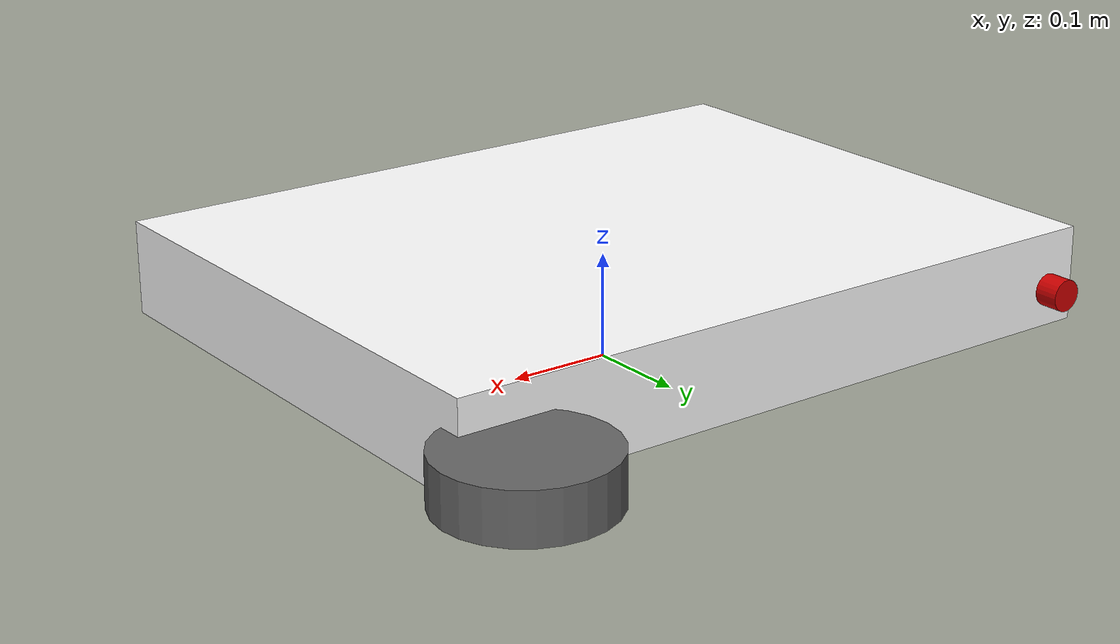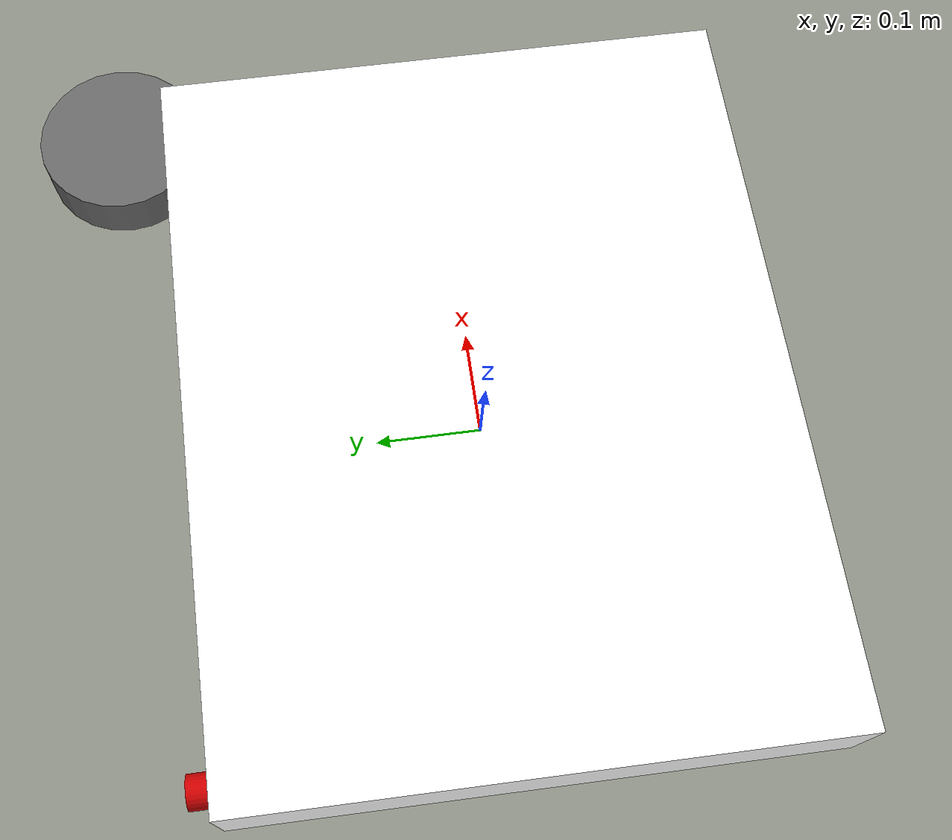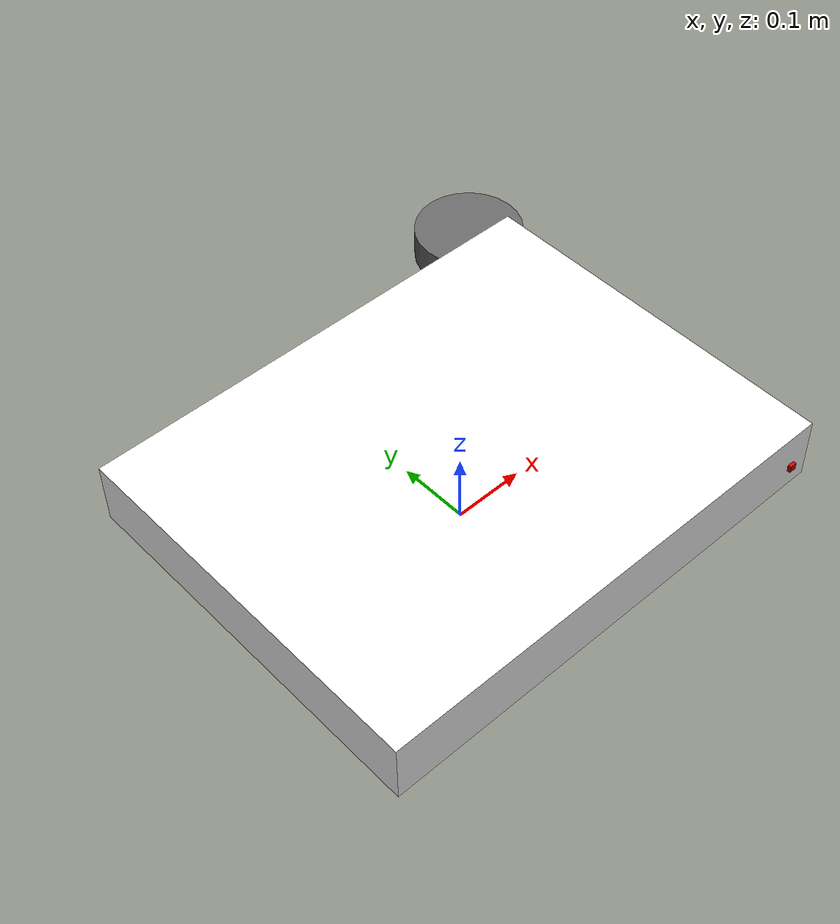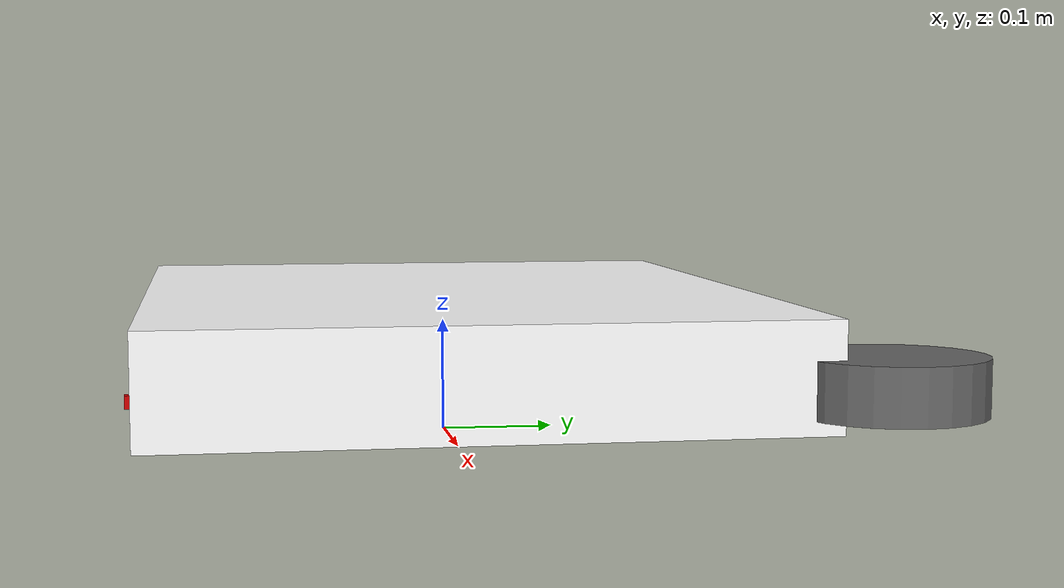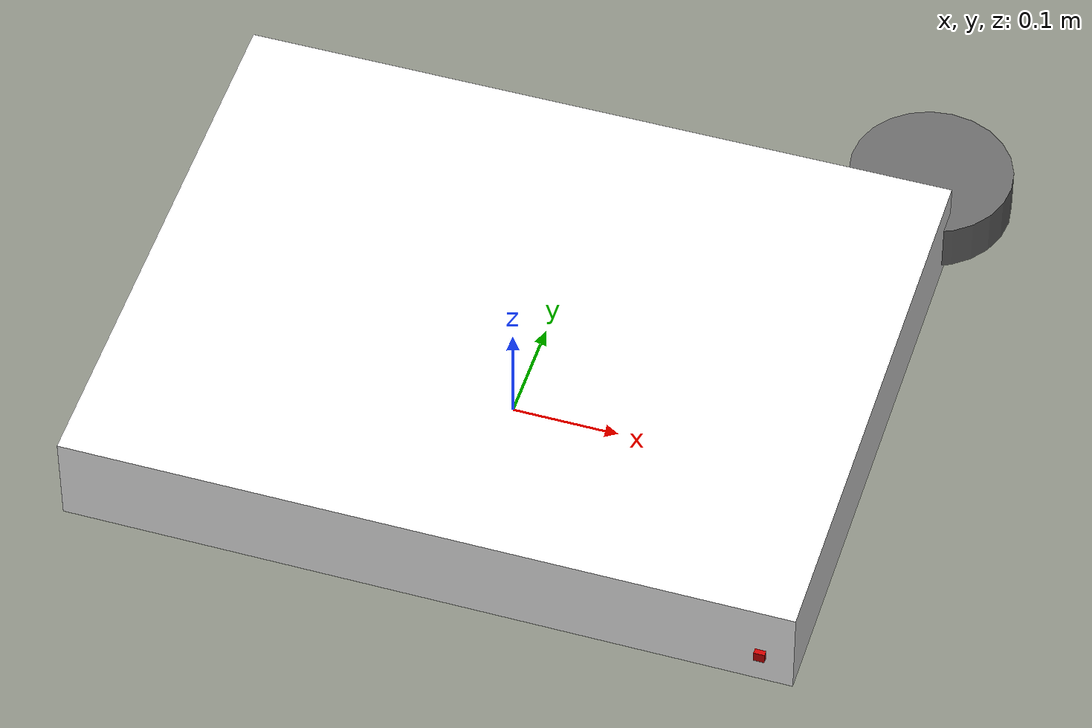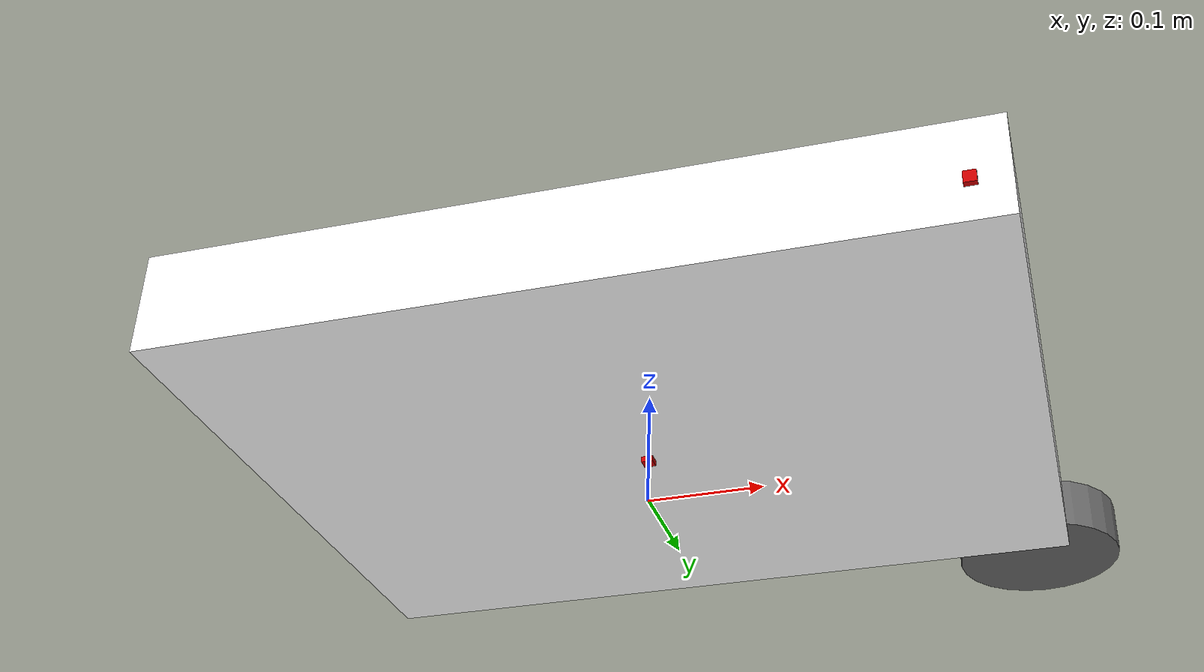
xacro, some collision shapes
<?xml version="1.0"?>
<robot name="robco_4wd_mecanum" xmlns:xacro="http://ros.org/wiki/xacro">

<!-- RobcoMW 4wd mecanum wheel robot description-->
<!-- Created by Stefan Chivarov-->
<!-- IICT-BAS BG - Version 1.0 from Feb. 15th, 2021. -->

<!--########### Properties, materials & calibration #####################################################-->
<xacro:include filename="$(find robco_4wd_mecanum_description)/urdf/common_macros.xacro" />
<xacro:include filename="$(find robco_4wd_mecanum_description)/urdf/left_wheel_assy_macros.xacro" />
 <!-- Include controller plugin for Gazebo -->
  <xacro:include filename="$(find robco_4wd_mecanum_description)/urdf/robco_4wd_mecanum.gazebo" />

<!--########### Hardware macros #####################################################-->

  <material name="yellow"><color rgba="0.8 0.8 0.0 1.0" /></material>
  <material name="black"><color rgba="0.15 0.15 0.15 1.0" /></material>
  <material name="dark_grey"><color rgba="0.2 0.2 0.2 1.0" /></material>
  <material name="light_grey"><color rgba="0.4 0.4 0.4 1.0" /></material>

     <material name="Black">
        <color rgba="0.0 0.0 0.0 1.0"/>
    </material>

    <material name="Blue">
        <color rgba="0.0 0.0 0.8 1.0"/>
    </material>

    <material name="Green">
        <color rgba="0.0 0.8 0.0 1.0"/>
    </material>

    <material name="Grey">
        <color rgba="0.2 0.2 0.2 1.0"/>
    </material>

    <material name="DarkGrey">
        <color rgba="0.1 0.1 0.1 1.0"/>
    </material>

    <material name="Orange">
        <color rgba="${255/255} ${108/255} ${10/255} 1.0"/>
    </material>

    <material name="Brown">
        <color rgba="${222/255} ${207/255} ${195/255} 1.0"/>
    </material>

    <material name="Red">
        <color rgba="0.8 0.0 0.0 1.0"/>
    </material>

    <material name="White">
        <color rgba="1.0 1.0 1.0 1.0"/>
    </material>

    <!-- ####### GENERIC CONSTANTS ##### -->

    <!--All units in m-kg-s-radians unit system -->
    <xacro:property name="PI" value="3.1415" />
    <xacro:property name="M_PI" value="3.14159265358979323846264338327950288419716" />
    <xacro:property name="M_PI_2" value="1.570796327" />
    <xacro:property name="ROTATE_90_DEGREES" value="1.570796327" />
    <xacro:property name="ROTATE_180_DEGREES" value="ROTATE_90_DEGREES*2" />
    <xacro:property name="DEG_TO_RAD" value="0.017453293" />
    <xacro:property name="SCALE_in_to_m" value="0.0254"/> <!--inches to meters-->
    <xacro:property name="SCALE_mm_to_m" value="0.001"/> <!--milimeters to meters-->
    <xacro:property name="kgcm_to_nm" value="0.0980665" />
    <xacro:property name="gram_to_kg" value="0.001" />

    <!-- ####### ROBOT ORIGINAL CHASSIS CONSTANTS ##### -->

    <!-- ORIGINAL CHASSIS DIMENSIONS  -->
    <xacro:property name="chassis_lenght" value="${675*SCALE_mm_to_m}" />
    <xacro:property name="chassis_width" value="${530*SCALE_mm_to_m}" />
    <xacro:property name="chassis_height" value="${89*SCALE_mm_to_m}" />
    <xacro:property name="chassis_half_height" value="${chassis_height/2}" />  <!-- 34.5 *SCALE_mm_to_m-->
    <xacro:property name="chassis_weight" value="${19.0-4*0.7}" /> <!-- in kg-->
    <!-- Chassis: distance from the ground to bottom -->
    <xacro:property name="chassis_bottom_z_offset" value="${40.2*SCALE_mm_to_m}" />
    <xacro:property name="chassis_center_to_base_footprint_z_offset" value="${40.2*SCALE_mm_to_m + chassis_half_height}" />

    <!-- EUROPEAN STANDARD 2020 ALUMINIUM EXTRUSION PROFILE DIMENSIONS  -->
    <xacro:property name="profile_2020_width" value="${20*SCALE_mm_to_m}" />
    <xacro:property name="profile_2020_height" value="${20*SCALE_mm_to_m}" />
    <!-- 2020 1 Meter weights 0.55 kg/m --> <!-- CHECK THE WIGHT FOR THE ACTUAL 2020 PROFILE USED -->
    <xacro:property name="profile_2020_weight_per_mm_lenght" value="${0.55/1000}" /> <!-- in kg/mm-->

    <!-- EUROPEAN STANDARD 2060 ALUMINIUM EXTRUSION PROFILE DIMENSIONS  -->
    <xacro:property name="profile_2060_width_horizontal" value="${60*SCALE_mm_to_m}" />
    <xacro:property name="profile_2060_height_horizontal" value="${20*SCALE_mm_to_m}" />
    <xacro:property name="profile_2060_height_horizontal" value="${20*SCALE_mm_to_m}" />
    <xacro:property name="profile_2060_height_vertical" value="${60*SCALE_mm_to_m}" />
  <!-- 2060 1 Meter wights 1.21 kg/m --> <!-- CHECK THE WIGHT FOR THE ACTUAL 2060 PROFILE USED -->
    <xacro:property name="profile_2060_weight_per_mm_lenght" value="${1.21/1000}" /> <!-- in kg/mm-->

    <!-- MOTOR WITH SUPPORT AND ELASTIC CLUTCH COUPLER DIMENSIONS  -->
    <!--  2.16 Kg - approximate with a box: h: 69 w: 60 l: 71+133.5+19 =223.5-->
    <xacro:property name="motor_assy_width" value="${60*SCALE_mm_to_m}" />
    <xacro:property name="motor_assy_height" value="${69*SCALE_mm_to_m}" />
    <xacro:property name="motor_assy_lenght" value="${223.5*SCALE_mm_to_m}" />

    <!-- FLANGE / WHEEL HINGE -->
    <!--  0.06 Kg - approximate with cylinder d56.8 h26.4+5=31.4 -->
    <xacro:property name="wheel_flange_diameter" value="${56.8*SCALE_mm_to_m}" />
    <xacro:property name="wheel_flange_lenght" value="${31.4*SCALE_mm_to_m}" />

    <!-- MECANUM WHEEL  SHAFT-->
    <xacro:property name="shaft_diameter" value="${30.0*SCALE_mm_to_m}" />
    <xacro:property name="shaft_radius" value="${shaft_diameter/2}" />
    <xacro:property name="shaft_lenght" value="${23.0*SCALE_mm_to_m}" />
    <xacro:property name="shaft_half_lenght" value="${shaft_lenght/2}" />
    <xacro:property name="shaft_mass" value="0.06" /> <!-- in kg-->
    <xacro:property name="shaft_x_offset" value="${307.5*SCALE_mm_to_m}" />
    <xacro:property name="shaft_y_offset" value="${265*SCALE_mm_to_m}" />
    <xacro:property name="shaft_z_offset" value="${34.5*SCALE_mm_to_m}" />

    <!-- MECANUM WHEELS -->
    <xacro:property name="wheel_diameter" value="${6*SCALE_in_to_m}" />
    <xacro:property name="wheel_radius" value="${wheel_diameter/2}" />
    <xacro:property name="wheel_width" value="${46*SCALE_mm_to_m}" />
    <xacro:property name="wheel_weight" value="0.820" /> <!-- in kg-->

    <xacro:property name="left_wheel_x_offset" value="${307.5*SCALE_mm_to_m}" />
    <xacro:property name="left_wheel_y_offset" value="${288.645468*SCALE_mm_to_m}" />
    <xacro:property name="left_wheel_z_offset" value="${34.5*SCALE_mm_to_m}" />

<!-- ####### END ROBOT CONSTANTS ##### -->

  <!-- base_footprint is a fictitious link(frame) that is on the ground right below base_link origin, navigation stack depends on this frame -->
  <link name="base_footprint">
  </link>

<!-- ======== VISUALIZERS ============ -->

  <joint name="shaft_visualizer_link_joint" type="fixed">
    <origin xyz="${shaft_x_offset} ${-shaft_y_offset} ${shaft_z_offset}" rpy="0 0 0" />
    <parent link="base_link"/>
    <child link="shaft_joint_visualizer" />
  </joint>

  <link name="shaft_joint_visualizer">
    <visual>
    <!-- The chassis is represented with a box, The origin of the box is in its center,
    that's why we need to add half of the box height to the distance from the bottom of the box here. -->
      <origin xyz="0 0 0" rpy="0 0 0" />
      <geometry>
      <box size="0.01 0.01 0.01"/>
      </geometry>
      <material name="Red" />
    </visual>

    <collision>
      <origin xyz="0 0 0"/>
      <geometry>
        <box size="0.1 0.1 0.1"/>
      </geometry>
    </collision>

    <inertial>
      <!-- Inertia from CAD model, filled box assumption -->
      <origin xyz="-0.01103 0 0.002" rpy="0 0 0"/>
      <mass value="2.844"/>
      <inertia
        ixx="0.018819942" ixy="0" ixz="-0.000101519"
        iyy="0.057333716" iyz="0"
        izz="0.074201740"/>
    </inertial>
  </link>

  <joint name="chassis__visualizer_link_joint" type="fixed">
    <origin xyz="0 0 ${chassis_bottom_z_offset}" rpy="0 0 0" />
    <parent link="base_footprint"/>
    <child link="chassis_joint_visualizer" />
  </joint>

  <link name="chassis_joint_visualizer">
    <visual>
    <!-- The chassis is represented with a box, The origin of the box is in its center,
    that's why we need to add half of the box height to the distance from the bottom of the box here. -->
      <origin xyz="0 0 0" rpy="0 0 0" />
      <geometry>
      <box size="0.01 0.01 0.01"/>
      </geometry>
      <material name="Red" />
    </visual>

    <collision>
      <origin xyz="0 0 0"/>
      <geometry>
        <box size="0.1 0.1 0.1"/>
      </geometry>
    </collision>

    <inertial>
      <!-- Inertia from CAD model, filled box assumption -->
      <origin xyz="-0.01103 0 0.002" rpy="0 0 0"/>
      <mass value="2.844"/>
      <inertia
        ixx="0.018819942" ixy="0" ixz="-0.000101519"
        iyy="0.057333716" iyz="0"
        izz="0.074201740"/>
    </inertial>
  </link>

<!-- The joint to the base_frame (the world) is set at height, equal to the distance form the ground to the bottom of the chassis -->
  <joint name="base_link_joint" type="fixed">
    <origin xyz="0 0 ${chassis_bottom_z_offset}" rpy="0 0 0" />
    <parent link="base_footprint"/>
    <child link="base_link" />
  </joint>

  <link name="base_link">
    <visual>
      <origin xyz="0 0 ${chassis_half_height}" rpy="0 0 0" />
      <geometry>
      <box size="${chassis_lenght} ${chassis_width} ${chassis_height}"/>
      </geometry>
      <material name="White" />

    </visual>

    <collision>
      <origin xyz="0 0 0"/>
      <geometry>
        <box size="${chassis_lenght} ${chassis_width} ${chassis_height}"/>
      </geometry>
    </collision>

    <inertial>
      <!-- Inertia from CAD model, filled box assumption -->
      <origin xyz="-0.01103 0 0.002" rpy="0 0 0"/>
      <mass value="2.844"/>
      <inertia
        ixx="0.018819942" ixy="0" ixz="-0.000101519"
        iyy="0.057333716" iyz="0"
        izz="0.074201740"/>
    </inertial>
  </link>

  <joint name="front_left_wheel_shaft_joint" type="fixed">
    <parent link="base_link"/>
    <child link="front_left_wheel_shaft" />
    <origin xyz="${shaft_x_offset} ${shaft_y_offset} ${shaft_z_offset}" rpy="0 0 0" />
  </joint>

  <link name="front_left_wheel_shaft">
    <visual>
      <origin xyz="0 ${shaft_half_lenght} 0" rpy="${ROTATE_90_DEGREES} 0 0" />
      <geometry>
        <cylinder radius="${shaft_radius}" length="${shaft_lenght}"/>
        <!-- Here insted of showing a cylinder, we can add a mesh file for a nicer visualization in the following way: -->
      </geometry>
      <material name="Red" />
    </visual>

    <collision>
      <origin xyz="0 ${shaft_half_lenght} 0"/>
      <geometry>
        <cylinder radius="${shaft_radius}" length="${shaft_lenght}"/>
      </geometry>
    </collision>

    <xacro:cylinder_inertial_with_origin radius="${shaft_radius}" length="${shaft_lenght}" mass="${shaft_mass}">
      <origin xyz="0 ${shaft_half_lenght} 0" rpy="0 0 0" />
    </xacro:cylinder_inertial_with_origin>

  </link>

  <joint name="front_left_wheel_joint" type="continuous">
    <origin xyz="0 ${shaft_lenght} 0" rpy="0 0 0" />
    <parent link="front_left_wheel_shaft"/>
    <child link="front_left_wheel" />
    <axis xyz="0 1 0"/>
  </joint>

  <link name="front_left_wheel">
    <visual>
      <origin xyz="0 ${shaft_lenght} 0" rpy="0 0 0"/>
      <geometry>
        <mesh filename="package://nexus_4wd_mecanum_description/meshes/mecanum_wheel_left.STL" scale="${1*SCALE_mm_to_m} ${0.92*SCALE_mm_to_m} ${1.52*SCALE_mm_to_m}"/>
      </geometry>
      <material name="light_grey"/>
    </visual>
    <collision>
      <origin xyz="0 ${shaft_lenght} 0" rpy="0 0 0"/>
      <geometry>
        <cylinder radius="${wheel_radius}" length="${wheel_width}"/>
      </geometry>
    </collision>
    <inertial>
      <origin xyz="0.0 0.0 0.0" rpy="0 0 0" />
      <mass value="0.3844"/>
      <!-- Inertia based on cylinder -->
      <inertia ixx="0.000324824" ixy="0" ixz="0" iyy="0.000480000" iyz="0" izz="0.000324824"/>
    </inertial>
  </link>

<!-- Invoke shaft_joint macros for the back left shaft -->
    <xacro:shaft_joint name="back_left">
      <origin xyz="${-shaft_x_offset} ${shaft_y_offset} ${shaft_z_offset}" rpy="0 0 0" />
    </xacro:shaft_joint>

<!-- Invoke shaft_link macros for the back left shaft -->
    <xacro:shaft_link name="back_left" radius="${shaft_radius}" lenght="${shaft_lenght}" mass="${shaft_mass}" color="Red">
      <origin xyz="0 ${shaft_half_lenght} 0" rpy="${ROTATE_90_DEGREES} 0 0" />
    </xacro:shaft_link>

<!-- Invoke shaft_joint macros for the front right shaft -->

<!-- Invoke shaft_link macros for the front right shaft -->

<!-- Invoke shaft_joint macros for the back right shaft -->

<!-- Invoke shaft_link macros for the back right shaft -->

  <!-- Include URM04 ultrasonic range finders -->
  <!-- front sensor -->
  <!-- left sensor -->
  <!-- right sensor -->
  <!-- rear sensor -->

</robot>

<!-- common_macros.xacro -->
<robot name="common_macros" xmlns:xacro="http://www.ros.org/wiki/xacro">

<!-- Common macros file -->
<!-- Created by Stefan Chivarov-->
<!-- IICT-BAS BG - Version 1.0 from Feb. 20th, 2021. -->

 <!-- #################### versions without origin #################### -->
  <xacro:macro name="sphere_inertial" params="radius mass">
    <inertial>
      <mass value="${mass}" />
      <origin xyz="0 0 0" />
      <inertia ixx="${0.4 * mass * radius * radius}" ixy="0.0" ixz="0.0"
        iyy="${0.4 * mass * radius * radius}" iyz="0.0"
        izz="${0.4 * mass * radius * radius}" />
    </inertial>
  </xacro:macro>

  <xacro:macro name="cylinder_inertial" params="radius length mass">
    <inertial>
      <mass value="${mass}" />
      <origin xyz="0 0 0" />
      <inertia ixx="${0.0833333 * mass * (3 * radius * radius + length * length)}" ixy="0.0" ixz="0.0"
        iyy="${0.0833333 * mass * (3 * radius * radius + length * length)}" iyz="0.0"
        izz="${0.5 * mass * radius * radius}" />
    </inertial>
  </xacro:macro>

  <xacro:macro name="box_inertial" params="x y z mass">
    <inertial>
      <mass value="${mass}" />
      <origin xyz="0 0 0" />
      <inertia ixx="${0.0833333 * mass * (y*y + z*z)}" ixy="0.0" ixz="0.0"
        iyy="${0.0833333 * mass * (x*x + z*z)}" iyz="0.0"
        izz="${0.0833333 * mass * (x*x + y*y)}" />
    </inertial>
  </xacro:macro>

  <!-- #################### versions with origin #################### -->
  <xacro:macro name="sphere_inertial_with_origin" params="radius mass *origin">
    <inertial>
      <mass value="${mass}" />
      <insert_block name="origin" />
      <inertia ixx="${0.4 * mass * radius * radius}" ixy="0.0" ixz="0.0"
        iyy="${0.4 * mass * radius * radius}" iyz="0.0"
        izz="${0.4 * mass * radius * radius}" />
    </inertial>
  </xacro:macro>

  <xacro:macro name="cylinder_inertial_with_origin" params="radius length mass *origin">
    <inertial>
      <mass value="${mass}" />
      <insert_block name="origin" />
      <inertia ixx="${0.0833333 * mass * (3 * radius * radius + length * length)}" ixy="0.0" ixz="0.0"
        iyy="${0.0833333 * mass * (3 * radius * radius + length * length)}" iyz="0.0"
        izz="${0.5 * mass * radius * radius}" />
    </inertial>
  </xacro:macro>

  <xacro:macro name="box_inertial_with_origin" params="x y z mass *origin">
    <inertial>
      <mass value="${mass}" />
      <insert_block name="origin" />
      <inertia ixx="${0.0833333 * mass * (y*y + z*z)}" ixy="0.0" ixz="0.0"
        iyy="${0.0833333 * mass * (x*x + z*z)}" iyz="0.0"
        izz="${0.0833333 * mass * (x*x + y*y)}" />
    </inertial>
  </xacro:macro>

 </robot>

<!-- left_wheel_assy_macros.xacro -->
<robot xmlns:xacro="http://www.ros.org/wiki/xacro">

  <xacro:macro name="shaft_joint" params="name *origin">
  <joint name="${name}_wheel_shaft_joint" type="fixed">
    <parent link="base_link"/>
    <child link="${name}_wheel_shaft_link" />
    <insert_block name="origin" />
  </joint>
  </xacro:macro>

  <xacro:macro name="shaft_link" params="name radius lenght mass color *origin">
  <link name="${name}_wheel_shaft_link">
    <visual>
      <insert_block name="origin" />
      <geometry>
        <cylinder radius="${radius}" length="${lenght}"/>
      </geometry>
      <material name="${color}" />
    </visual>
    <collision>
      <insert_block name="origin" />
      <geometry>
        <cylinder radius="${radius}" length="${lenght}"/>
      </geometry>
    </collision>
    <xacro:cylinder_inertial_with_origin radius="${radius}" length="${lenght}" mass="${mass}">
      <insert_block name="origin" />
    </xacro:cylinder_inertial_with_origin>
  </link>
  </xacro:macro>

  <xacro:macro name="wheel_joint" params="name *origin *axis">
  <joint name="${name}_wheel_joint" type="fixed">
    <insert_block name="origin" />
    <parent link="${name}_wheel_shaft_link"/>
    <child link="${name}_wheel_link" />
    <insert_block name="axis" />
  </joint>
  </xacro:macro>

  <xacro:macro name="wheel_link" params="name radius width mass color *origin mesh_file_name mesh_scale_x mesh_scale_y mesh_scale_z">
  <link name="${name}_wheel_link">
    <visual>
    <insert_block name="origin" />
      <geometry>
        <mesh filename="${mesh_file_name}" scale="${mesh_scale_x} ${mesh_scale_y} ${mesh_scale_z}"/>
      </geometry>
      <material name="${color}"/>
    </visual>
    <collision>
    <insert_block name="origin" />
      <geometry>
        <cylinder radius="${radius}" length="${width}"/>
      </geometry>
    </collision>
    <xacro:cylinder_inertial_with_origin radius="${radius}" length="${width}" mass="${mass}">
    <insert_block name="origin" />
    </xacro:cylinder_inertial_with_origin>
  </link>
  </xacro:macro>

</robot>
